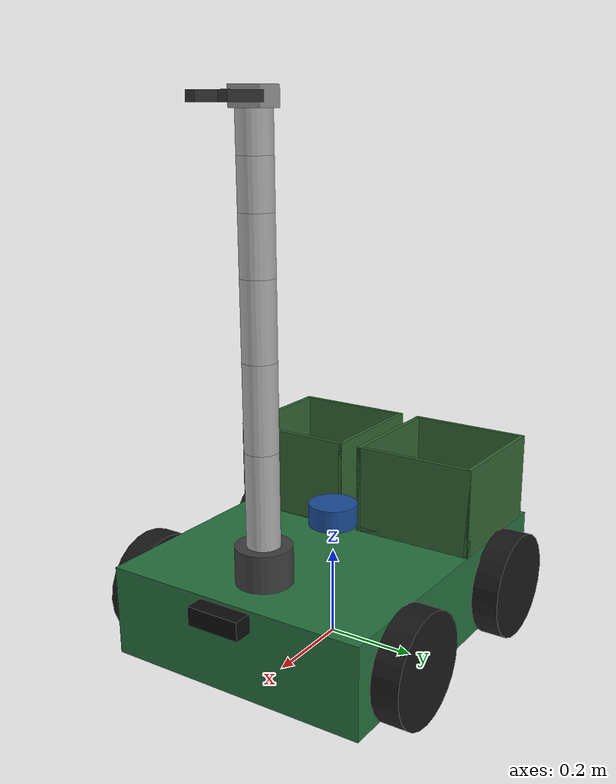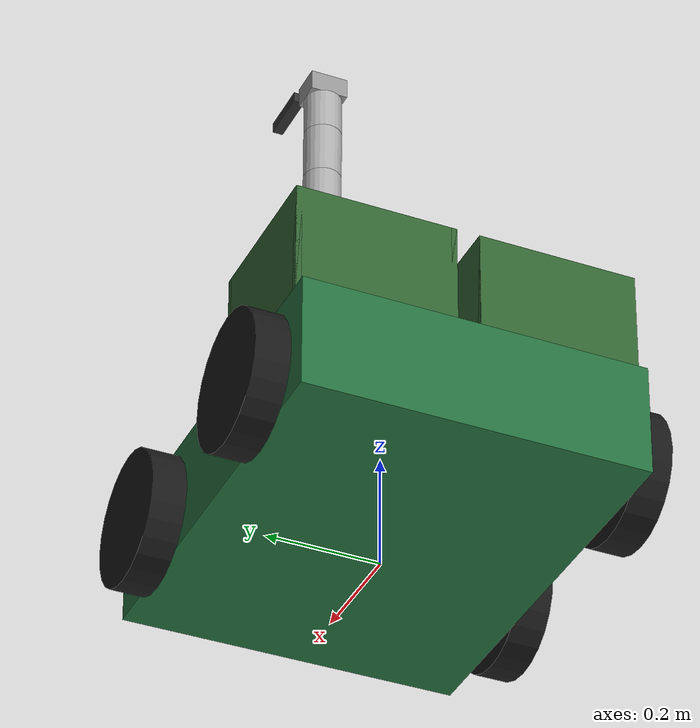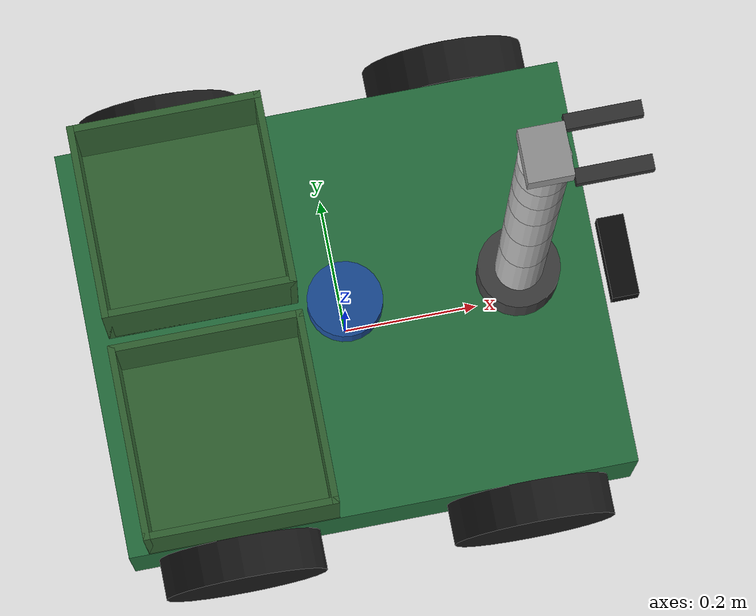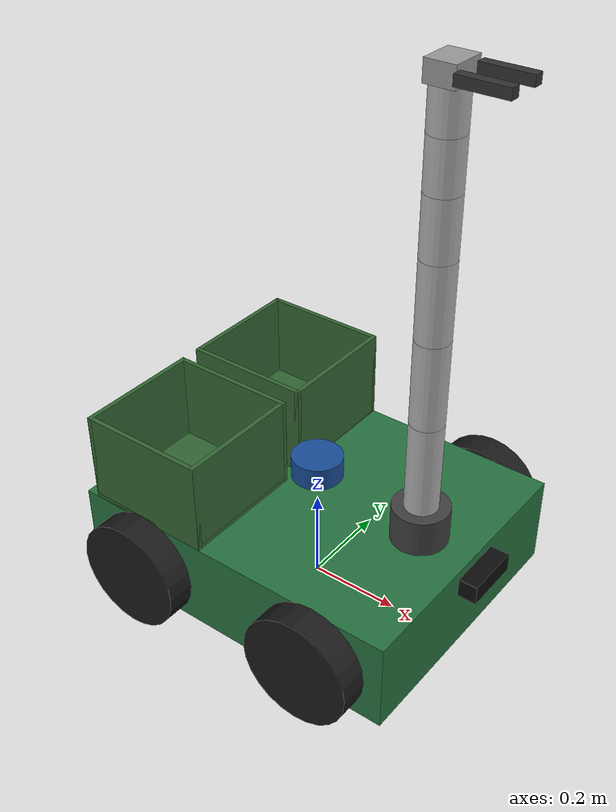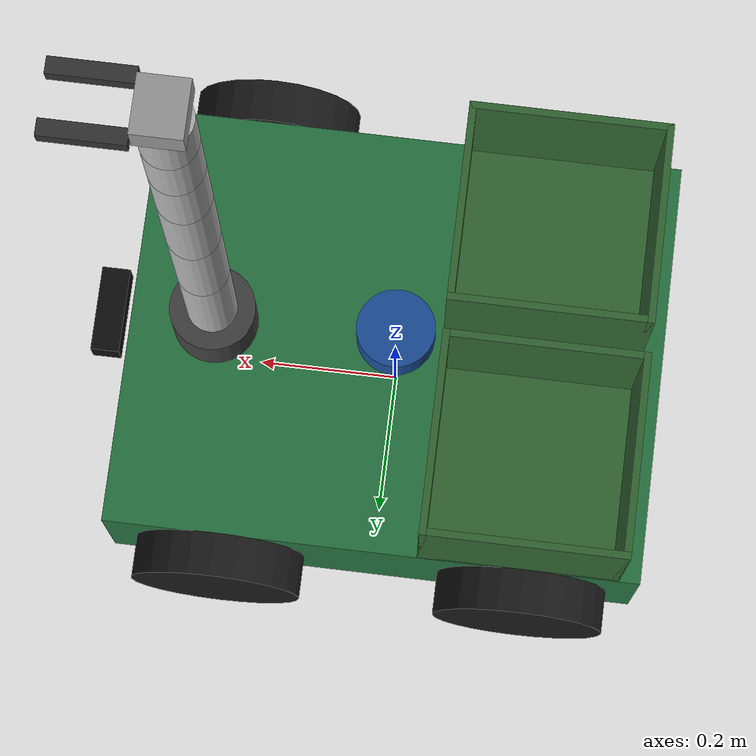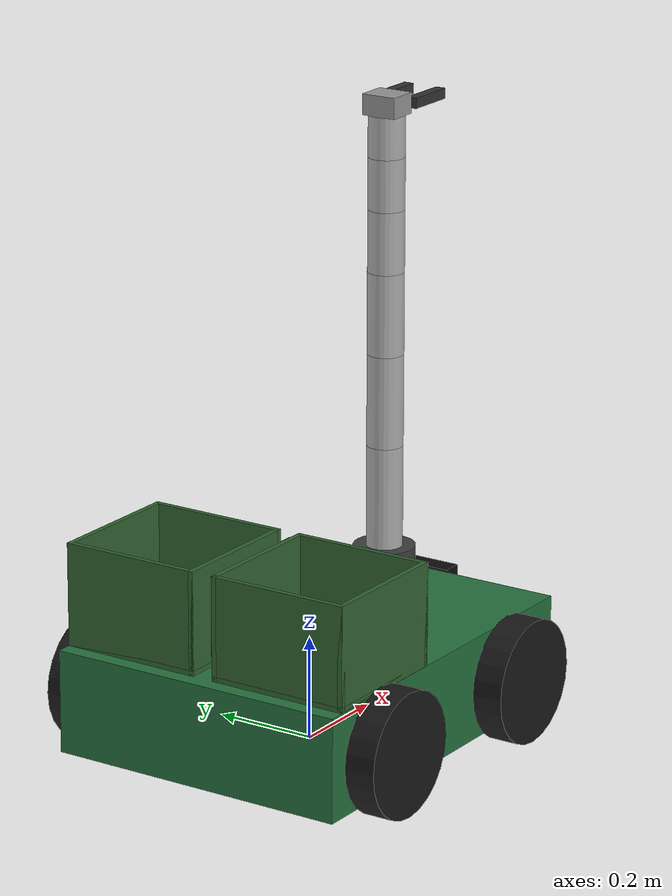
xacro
<?xml version="1.0"?>
<robot xmlns:xacro="http://www.ros.org/wiki/xacro" name="green_guardian">

  <!-- Includes -->
  <xacro:include filename="$(find robot_description)/urdf/base/base.xacro"/>
  <xacro:include filename="$(find robot_description)/urdf/base/wheels.xacro"/>
  <xacro:include filename="$(find robot_description)/urdf/base/bins.xacro"/>
  <xacro:include filename="$(find robot_description)/urdf/sensors/lidar.xacro"/>
  <xacro:include filename="$(find robot_description)/urdf/sensors/depth_camera.xacro"/>
  <xacro:include filename="$(find robot_description)/urdf/arm/arm.xacro"/>

  <!-- Base + footprint -->
  <xacro:base/>

  <!-- Wheels -->
  <xacro:wheels/>

  <!-- Sensors -->
  <xacro:lidar parent="base_link"/>
  <xacro:depth_camera parent="base_link"/>

  <!-- Rear bins -->
  <xacro:bins parent="base_link"/>

  <!-- Arm mount (same mount point you had) -->
  <xacro:arm_6dof parent="base_link" prefix="arm_" xyz="0.255 0.0 0.10" rpy="0 0 0"/>

</robot>

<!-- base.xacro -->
<robot xmlns:xacro="http://www.ros.org/wiki/xacro">

  <xacro:property name="base_length" value="0.75"/>
  <xacro:property name="base_width"  value="0.60"/>
  <xacro:property name="base_height" value="0.20"/>
  <xacro:property name="ground_clearance" value="0.03"/>

  <!-- Helpful inertia macro (simple box) -->
  <xacro:macro name="inertial_box" params="m x y z">
    <inertial>
      <mass value="${m}"/>
      <origin xyz="0 0 0" rpy="0 0 0"/>
      <!-- Box inertia approximation -->
      <inertia
        ixx="${m/12.0*(y*y+z*z)}"
        iyy="${m/12.0*(x*x+z*z)}"
        izz="${m/12.0*(x*x+y*y)}"
        ixy="0" ixz="0" iyz="0"/>
    </inertial>
  </xacro:macro>

  <xacro:macro name="base">
    <link name="base_footprint"/>

    <link name="base_link">
      <visual>
        <origin xyz="0 0 0" rpy="0 0 0"/>
        <geometry>
          <box size="${base_length} ${base_width} ${base_height}"/>
        </geometry>
        <material name="chassis_green">
          <color rgba="0.15 0.45 0.25 1.0"/>
        </material>
      </visual>

      <collision>
        <origin xyz="0 0 0" rpy="0 0 0"/>
        <geometry>
          <box size="${base_length} ${base_width} ${base_height}"/>
        </geometry>
      </collision>

      <!-- optional mass for RViz/robot_state_publisher sanity -->
      <xacro:inertial_box m="12.0" x="${base_length}" y="${base_width}" z="${base_height}"/>
    </link>

    <!-- base_footprint at ground, base_link centered in chassis above it -->
    <joint name="base_footprint_joint" type="fixed">
      <parent link="base_footprint"/>
      <child link="base_link"/>
      <origin xyz="0 0 ${base_height/2.0 + ground_clearance}" rpy="0 0 0"/>
    </joint>
  </xacro:macro>

</robot>

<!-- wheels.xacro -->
<robot xmlns:xacro="http://www.ros.org/wiki/xacro">

  <xacro:property name="half_pi" value="${pi/2.0}"/>

  <xacro:property name="base_length" value="0.75"/>
  <xacro:property name="base_width"  value="0.60"/>
  <xacro:property name="base_height" value="0.20"/>
  <xacro:property name="ground_clearance" value="0.03"/>

  <xacro:property name="wheel_radius" value="0.12"/>
  <xacro:property name="wheel_width"  value="0.06"/>
  <xacro:property name="wheel_x_offset" value="0.16"/>

  <xacro:property name="wheel_z" value="${wheel_radius - base_height/2.0 - ground_clearance}"/>
  <xacro:property name="wheel_y" value="${base_width/2.0 + wheel_width/2.0}"/>

  <xacro:macro name="inertial_cyl" params="m r l">
    <inertial>
      <mass value="${m}"/>
      <origin xyz="0 0 0" rpy="0 0 0"/>
      <inertia
        ixx="${(1/12.0)*m*(3*r*r + l*l)}"
        iyy="${(1/12.0)*m*(3*r*r + l*l)}"
        izz="${0.5*m*r*r}"
        ixy="0" ixz="0" iyz="0"/>
    </inertial>
  </xacro:macro>

  <xacro:macro name="wheel" params="name x y">
    <link name="${name}">
      <visual>
        <!-- cylinder axis along Z by default, rotate so it matches wheel -->
        <origin xyz="0 0 0" rpy="${half_pi} 0 0"/>
        <geometry>
          <cylinder radius="${wheel_radius}" length="${wheel_width}"/>
        </geometry>
        <material name="wheel_black">
          <color rgba="0.1 0.1 0.1 1.0"/>
        </material>
      </visual>

      <collision>
        <origin xyz="0 0 0" rpy="${half_pi} 0 0"/>
        <geometry>
          <cylinder radius="${wheel_radius}" length="${wheel_width}"/>
        </geometry>
      </collision>

      <xacro:inertial_cyl m="1.0" r="${wheel_radius}" l="${wheel_width}"/>
    </link>

    <!-- Revolute for simulation; for pure RViz it is okay -->
    <joint name="${name}_joint" type="continuous">
      <parent link="base_link"/>
      <child link="${name}"/>
      <origin xyz="${x} ${y} ${wheel_z}" rpy="0 0 0"/>
      <!-- wheel spins around Y after our visual rotation -->
      <axis xyz="0 1 0"/>
    </joint>
  </xacro:macro>

  <xacro:macro name="wheels">
    <xacro:wheel name="front_left_wheel"  x="${ base_length/2.0 - wheel_x_offset}" y="${ wheel_y}"/>
    <xacro:wheel name="rear_left_wheel"   x="${-base_length/2.0 + wheel_x_offset}" y="${ wheel_y}"/>
    <xacro:wheel name="front_right_wheel" x="${ base_length/2.0 - wheel_x_offset}" y="${-wheel_y}"/>
    <xacro:wheel name="rear_right_wheel"  x="${-base_length/2.0 + wheel_x_offset}" y="${-wheel_y}"/>
  </xacro:macro>

</robot>

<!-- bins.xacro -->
<robot xmlns:xacro="http://www.ros.org/wiki/xacro">

  <xacro:property name="base_length" value="0.75"/>
  <xacro:property name="base_width"  value="0.60"/>
  <xacro:property name="base_height" value="0.20"/>

  <xacro:property name="bin_gap" value="0.04"/>
  <xacro:property name="bin_length" value="0.28"/>
  <xacro:property name="bin_width" value="${(base_width - bin_gap)/2.0}"/>
  <xacro:property name="bin_height" value="0.20"/>
  <xacro:property name="bin_wall" value="0.01"/>
  <xacro:property name="bin_floor" value="0.01"/>

  <xacro:property name="bin_x" value="${-(base_length/2.0 - bin_length/2.0 - 0.03)}"/>
  <xacro:property name="bin_y" value="${bin_width/2.0 + bin_gap/2.0}"/>
  <xacro:property name="bin_z" value="${base_height/2.0 + bin_height/2.0}"/>

  <xacro:macro name="bin" params="name x y z">
    <link name="${name}">
      <visual>
        <origin xyz="0 0 ${(-bin_height/2.0 + bin_floor/2.0)}" rpy="0 0 0"/>
        <geometry><box size="${bin_length} ${bin_width} ${bin_floor}"/></geometry>
        <material name="bin_green"><color rgba="0.2 0.4 0.2 1.0"/></material>
      </visual>

      <!-- walls -->
      <visual><origin xyz="${(bin_length/2.0 - bin_wall/2.0)} 0 0"/><geometry><box size="${bin_wall} ${bin_width} ${bin_height}"/></geometry><material name="bin_green"/></visual>
      <visual><origin xyz="${-(bin_length/2.0 - bin_wall/2.0)} 0 0"/><geometry><box size="${bin_wall} ${bin_width} ${bin_height}"/></geometry><material name="bin_green"/></visual>
      <visual><origin xyz="0 ${(bin_width/2.0 - bin_wall/2.0)} 0"/><geometry><box size="${bin_length} ${bin_wall} ${bin_height}"/></geometry><material name="bin_green"/></visual>
      <visual><origin xyz="0 ${-(bin_width/2.0 - bin_wall/2.0)} 0"/><geometry><box size="${bin_length} ${bin_wall} ${bin_height}"/></geometry><material name="bin_green"/></visual>

      <collision>
        <origin xyz="0 0 0" rpy="0 0 0"/>
        <geometry><box size="${bin_length} ${bin_width} ${bin_height}"/></geometry>
      </collision>
    </link>

    <joint name="${name}_joint" type="fixed">
      <parent link="base_link"/>
      <child link="${name}"/>
      <origin xyz="${x} ${y} ${z}" rpy="0 0 0"/>
    </joint>
  </xacro:macro>

  <xacro:macro name="bins" params="parent">
    <!-- parent is unused because we fix to base_link in joints (ok) -->
    <xacro:bin name="rear_bin_left"  x="${bin_x}" y="${ bin_y}" z="${bin_z}"/>
    <xacro:bin name="rear_bin_right" x="${bin_x}" y="${-bin_y}" z="${bin_z}"/>
  </xacro:macro>

</robot>

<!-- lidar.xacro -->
<robot xmlns:xacro="http://www.ros.org/wiki/xacro">

  <xacro:property name="lidar_radius" value="0.055"/>
  <xacro:property name="lidar_height" value="0.05"/>
  <xacro:property name="base_height"  value="0.20"/>

  <xacro:macro name="lidar" params="parent">
    <link name="lidar_link">
      <visual>
        <origin xyz="0 0 ${lidar_height/2.0}" rpy="0 0 0"/>
        <geometry>
          <cylinder radius="${lidar_radius}" length="${lidar_height}"/>
        </geometry>
        <material name="sensor_blue">
          <color rgba="0.1 0.3 0.6 1.0"/>
        </material>
      </visual>
      <collision>
        <origin xyz="0 0 ${lidar_height/2.0}" rpy="0 0 0"/>
        <geometry>
          <cylinder radius="${lidar_radius}" length="${lidar_height}"/>
        </geometry>
      </collision>
    </link>

    <joint name="lidar_joint" type="fixed">
      <parent link="${parent}"/>
      <child link="lidar_link"/>
      <origin xyz="0 0 ${base_height/2.0 + lidar_height/2.0 + 0.01}" rpy="0 0 0"/>
    </joint>
  </xacro:macro>

</robot>

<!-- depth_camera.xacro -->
<robot xmlns:xacro="http://www.ros.org/wiki/xacro">

  <xacro:property name="base_length" value="0.75"/>
  <xacro:property name="base_height" value="0.20"/>

  <xacro:property name="depth_camera_width"  value="0.12"/>
  <xacro:property name="depth_camera_depth"  value="0.04"/>
  <xacro:property name="depth_camera_height" value="0.04"/>

  <xacro:macro name="depth_camera" params="parent">
    <link name="depth_camera_link">
      <visual>
        <origin xyz="0 0 0" rpy="0 0 0"/>
        <geometry>
          <box size="${depth_camera_depth} ${depth_camera_width} ${depth_camera_height}"/>
        </geometry>
        <material name="sensor_black">
          <color rgba="0.05 0.05 0.05 1.0"/>
        </material>
      </visual>
      <collision>
        <origin xyz="0 0 0" rpy="0 0 0"/>
        <geometry>
          <box size="${depth_camera_depth} ${depth_camera_width} ${depth_camera_height}"/>
        </geometry>
      </collision>
    </link>

    <joint name="depth_camera_joint" type="fixed">
      <parent link="${parent}"/>
      <child link="depth_camera_link"/>
      <!-- forward-front mount -->
      <origin
        xyz="${base_length/2.0 + depth_camera_depth/2.0 + 0.01} 0 ${base_height/2.0 - depth_camera_height/2.0}"
        rpy="0 0 0"/>
    </joint>
  </xacro:macro>

</robot>

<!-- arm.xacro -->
<robot xmlns:xacro="http://www.ros.org/wiki/xacro">

  <xacro:include filename="$(find robot_description)/urdf/arm/gripper.xacro"/>

  <xacro:macro name="arm_6dof" params="parent prefix xyz rpy">

    <xacro:property name="arm_base_height" value="0.08"/>
    <xacro:property name="arm_base_radius" value="0.06"/>

    <xacro:property name="link_radius" value="0.035"/>
    <xacro:property name="link1_length" value="0.20"/>
    <xacro:property name="link2_length" value="0.18"/>
    <xacro:property name="link3_length" value="0.16"/>
    <xacro:property name="link4_length" value="0.12"/>
    <xacro:property name="link5_length" value="0.10"/>
    <xacro:property name="link6_length" value="0.08"/>

    <!-- Arm base -->
    <link name="${prefix}base_link">
      <visual>
        <origin xyz="0 0 ${arm_base_height/2.0}" rpy="0 0 0"/>
        <geometry><cylinder radius="${arm_base_radius}" length="${arm_base_height}"/></geometry>
        <material name="arm_base"><color rgba="0.25 0.25 0.25 1.0"/></material>
      </visual>
      <collision>
        <origin xyz="0 0 ${arm_base_height/2.0}" rpy="0 0 0"/>
        <geometry><cylinder radius="${arm_base_radius}" length="${arm_base_height}"/></geometry>
      </collision>
    </link>

    <joint name="${prefix}mount_joint" type="fixed">
      <parent link="${parent}"/>
      <child link="${prefix}base_link"/>
      <origin xyz="${xyz}" rpy="${rpy}"/>
    </joint>

    <!-- Joint 1 -->
    <link name="${prefix}link_1">
      <visual><origin xyz="0 0 ${link1_length/2.0}"/><geometry><cylinder radius="${link_radius}" length="${link1_length}"/></geometry><material name="arm_link"><color rgba="0.7 0.7 0.7 1.0"/></material></visual>
      <collision><origin xyz="0 0 ${link1_length/2.0}"/><geometry><cylinder radius="${link_radius}" length="${link1_length}"/></geometry></collision>
    </link>
    <joint name="${prefix}joint_1" type="revolute">
      <parent link="${prefix}base_link"/>
      <child link="${prefix}link_1"/>
      <origin xyz="0 0 ${arm_base_height}" rpy="0 0 0"/>
      <axis xyz="0 0 1"/>
      <limit lower="-3.1416" upper="3.1416" effort="10" velocity="1.0"/>
    </joint>

    <!-- Joint 2 -->
    <link name="${prefix}link_2">
      <visual><origin xyz="0 0 ${link2_length/2.0}"/><geometry><cylinder radius="${link_radius}" length="${link2_length}"/></geometry><material name="arm_link"/></visual>
      <collision><origin xyz="0 0 ${link2_length/2.0}"/><geometry><cylinder radius="${link_radius}" length="${link2_length}"/></geometry></collision>
    </link>
    <joint name="${prefix}joint_2" type="revolute">
      <parent link="${prefix}link_1"/>
      <child link="${prefix}link_2"/>
      <origin xyz="0 0 ${link1_length}" rpy="0 0 0"/>
      <axis xyz="0 1 0"/>
      <limit lower="-1.5708" upper="1.5708" effort="10" velocity="1.0"/>
    </joint>

    <!-- Joint 3 -->
    <link name="${prefix}link_3">
      <visual><origin xyz="0 0 ${link3_length/2.0}"/><geometry><cylinder radius="${link_radius}" length="${link3_length}"/></geometry><material name="arm_link"/></visual>
      <collision><origin xyz="0 0 ${link3_length/2.0}"/><geometry><cylinder radius="${link_radius}" length="${link3_length}"/></geometry></collision>
    </link>
    <joint name="${prefix}joint_3" type="revolute">
      <parent link="${prefix}link_2"/>
      <child link="${prefix}link_3"/>
      <origin xyz="0 0 ${link2_length}" rpy="0 0 0"/>
      <axis xyz="0 1 0"/>
      <limit lower="-1.5708" upper="1.5708" effort="10" velocity="1.0"/>
    </joint>

    <!-- Joint 4 -->
    <link name="${prefix}link_4">
      <visual><origin xyz="0 0 ${link4_length/2.0}"/><geometry><cylinder radius="${link_radius}" length="${link4_length}"/></geometry><material name="arm_link"/></visual>
      <collision><origin xyz="0 0 ${link4_length/2.0}"/><geometry><cylinder radius="${link_radius}" length="${link4_length}"/></geometry></collision>
    </link>
    <joint name="${prefix}joint_4" type="revolute">
      <parent link="${prefix}link_3"/>
      <child link="${prefix}link_4"/>
      <origin xyz="0 0 ${link3_length}" rpy="0 0 0"/>
      <axis xyz="1 0 0"/>
      <limit lower="-3.1416" upper="3.1416" effort="10" velocity="1.0"/>
    </joint>

    <!-- Joint 5 -->
    <link name="${prefix}link_5">
      <visual><origin xyz="0 0 ${link5_length/2.0}"/><geometry><cylinder radius="${link_radius}" length="${link5_length}"/></geometry><material name="arm_link"/></visual>
      <collision><origin xyz="0 0 ${link5_length/2.0}"/><geometry><cylinder radius="${link_radius}" length="${link5_length}"/></geometry></collision>
    </link>
    <joint name="${prefix}joint_5" type="revolute">
      <parent link="${prefix}link_4"/>
      <child link="${prefix}link_5"/>
      <origin xyz="0 0 ${link4_length}" rpy="0 0 0"/>
      <axis xyz="0 1 0"/>
      <limit lower="-1.5708" upper="1.5708" effort="10" velocity="1.0"/>
    </joint>

    <!-- Joint 6 -->
    <link name="${prefix}link_6">
      <visual><origin xyz="0 0 ${link6_length/2.0}"/><geometry><cylinder radius="${link_radius}" length="${link6_length}"/></geometry><material name="arm_link"/></visual>
      <collision><origin xyz="0 0 ${link6_length/2.0}"/><geometry><cylinder radius="${link_radius}" length="${link6_length}"/></geometry></collision>
    </link>
    <joint name="${prefix}joint_6" type="revolute">
      <parent link="${prefix}link_5"/>
      <child link="${prefix}link_6"/>
      <origin xyz="0 0 ${link5_length}" rpy="0 0 0"/>
      <axis xyz="1 0 0"/>
      <limit lower="-3.1416" upper="3.1416" effort="10" velocity="1.0"/>
    </joint>

    <!-- Gripper attached at end -->
    <xacro:simple_gripper
      parent="${prefix}link_6"
      prefix="${prefix}gripper_"
      xyz="0 0 ${link6_length}"
      rpy="0 0 0"/>

  </xacro:macro>

</robot>

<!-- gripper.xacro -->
<robot xmlns:xacro="http://www.ros.org/wiki/xacro">

  <xacro:macro name="simple_gripper" params="parent prefix xyz:='0 0 0' rpy:='0 0 0'">

    <xacro:property name="gripper_base_length" value="0.06"/>
    <xacro:property name="gripper_base_width"  value="0.07"/>
    <xacro:property name="gripper_base_height" value="0.04"/>

    <xacro:property name="finger_length" value="0.10"/>
    <xacro:property name="finger_width"  value="0.02"/>
    <xacro:property name="finger_height" value="0.02"/>
    <xacro:property name="finger_gap" value="0.05"/>

    <link name="${prefix}base_link">
      <visual>
        <origin xyz="0 0 ${gripper_base_height/2.0}" rpy="0 0 0"/>
        <geometry><box size="${gripper_base_length} ${gripper_base_width} ${gripper_base_height}"/></geometry>
        <material name="gripper_gray"><color rgba="0.6 0.6 0.6 1.0"/></material>
      </visual>
      <collision>
        <origin xyz="0 0 ${gripper_base_height/2.0}" rpy="0 0 0"/>
        <geometry><box size="${gripper_base_length} ${gripper_base_width} ${gripper_base_height}"/></geometry>
      </collision>
    </link>

    <joint name="${prefix}mount_joint" type="fixed">
      <parent link="${parent}"/>
      <child link="${prefix}base_link"/>
      <origin xyz="${xyz}" rpy="${rpy}"/>
    </joint>

    <link name="${prefix}left_finger">
      <visual>
        <origin xyz="${(gripper_base_length/2.0 + finger_length/2.0)} ${(finger_gap/2.0 + finger_width/2.0)} ${gripper_base_height/2.0}" rpy="0 0 0"/>
        <geometry><box size="${finger_length} ${finger_width} ${finger_height}"/></geometry>
        <material name="gripper_dark"><color rgba="0.2 0.2 0.2 1.0"/></material>
      </visual>
      <collision>
        <origin xyz="${(gripper_base_length/2.0 + finger_length/2.0)} ${(finger_gap/2.0 + finger_width/2.0)} ${gripper_base_height/2.0}" rpy="0 0 0"/>
        <geometry><box size="${finger_length} ${finger_width} ${finger_height}"/></geometry>
      </collision>
    </link>
    <joint name="${prefix}left_finger_joint" type="fixed">
      <parent link="${prefix}base_link"/>
      <child link="${prefix}left_finger"/>
      <origin xyz="0 0 0" rpy="0 0 0"/>
    </joint>

    <link name="${prefix}right_finger">
      <visual>
        <origin xyz="${(gripper_base_length/2.0 + finger_length/2.0)} ${-(finger_gap/2.0 + finger_width/2.0)} ${gripper_base_height/2.0}" rpy="0 0 0"/>
        <geometry><box size="${finger_length} ${finger_width} ${finger_height}"/></geometry>
        <material name="gripper_dark"/>
      </visual>
      <collision>
        <origin xyz="${(gripper_base_length/2.0 + finger_length/2.0)} ${-(finger_gap/2.0 + finger_width/2.0)} ${gripper_base_height/2.0}" rpy="0 0 0"/>
        <geometry><box size="${finger_length} ${finger_width} ${finger_height}"/></geometry>
      </collision>
    </link>
    <joint name="${prefix}right_finger_joint" type="fixed">
      <parent link="${prefix}base_link"/>
      <child link="${prefix}right_finger"/>
      <origin xyz="0 0 0" rpy="0 0 0"/>
    </joint>

  </xacro:macro>

</robot>
